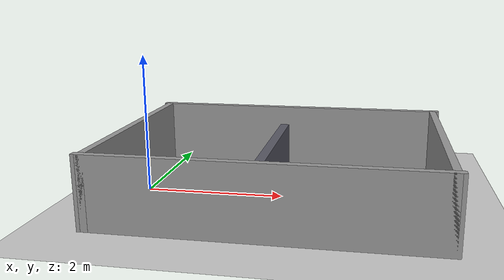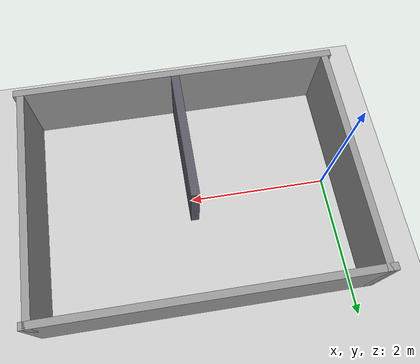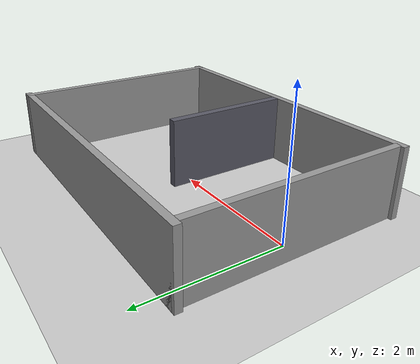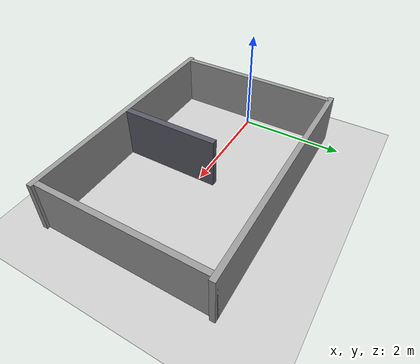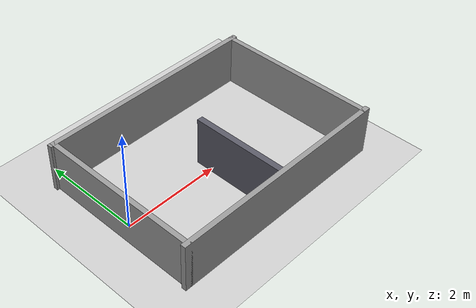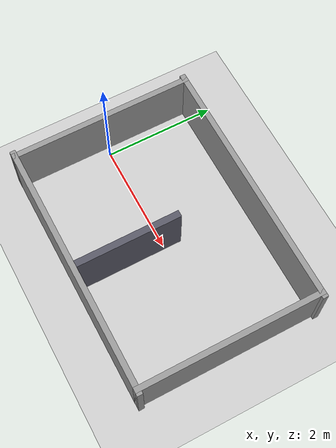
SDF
<?xml version="1.0" ?>
<sdf version="1.6">
  <world name="room">
    <include>
      <uri>model://sun</uri>
    </include>
    <include>
      <uri>model://ground_plane</uri>
    </include>

    <model name="wall_south">
      <static>true</static>
      <pose>2.0 -1.6 0.5 0 0 0</pose>
      <link name="link">
        <collision name="collision">
          <geometry><box><size>4.6 0.1 1.0</size></box></geometry>
        </collision>
        <visual name="visual">
          <geometry><box><size>4.6 0.1 1.0</size></box></geometry>
          <material>
            <ambient>0.6 0.6 0.6 1</ambient>
          </material>
        </visual>
      </link>
    </model>

    <model name="wall_north">
      <static>true</static>
      <pose>2.0 1.6 0.5 0 0 0</pose>
      <link name="link">
        <collision name="collision">
          <geometry><box><size>4.6 0.1 1.0</size></box></geometry>
        </collision>
        <visual name="visual">
          <geometry><box><size>4.6 0.1 1.0</size></box></geometry>
          <material>
            <ambient>0.6 0.6 0.6 1</ambient>
          </material>
        </visual>
      </link>
    </model>

    <model name="wall_west">
      <static>true</static>
      <pose>-0.2 0.0 0.5 0 0 0</pose>
      <link name="link">
        <collision name="collision">
          <geometry><box><size>0.1 3.3 1.0</size></box></geometry>
        </collision>
        <visual name="visual">
          <geometry><box><size>0.1 3.3 1.0</size></box></geometry>
          <material>
            <ambient>0.6 0.6 0.6 1</ambient>
          </material>
        </visual>
      </link>
    </model>

    <model name="wall_east">
      <static>true</static>
      <pose>4.2 0.0 0.5 0 0 0</pose>
      <link name="link">
        <collision name="collision">
          <geometry><box><size>0.1 3.3 1.0</size></box></geometry>
        </collision>
        <visual name="visual">
          <geometry><box><size>0.1 3.3 1.0</size></box></geometry>
          <material>
            <ambient>0.6 0.6 0.6 1</ambient>
          </material>
        </visual>
      </link>
    </model>

    <!-- 中间隔墙，北侧留出绕行缺口。 -->
    <model name="divider">
      <static>true</static>
      <pose>2.0 -0.62 0.5 0 0 0</pose>
      <link name="link">
        <collision name="collision">
          <geometry><box><size>0.12 1.86 1.0</size></box></geometry>
        </collision>
        <visual name="visual">
          <geometry><box><size>0.12 1.86 1.0</size></box></geometry>
          <material>
            <ambient>0.35 0.35 0.4 1</ambient>
          </material>
        </visual>
      </link>
    </model>
  </world>
</sdf>
